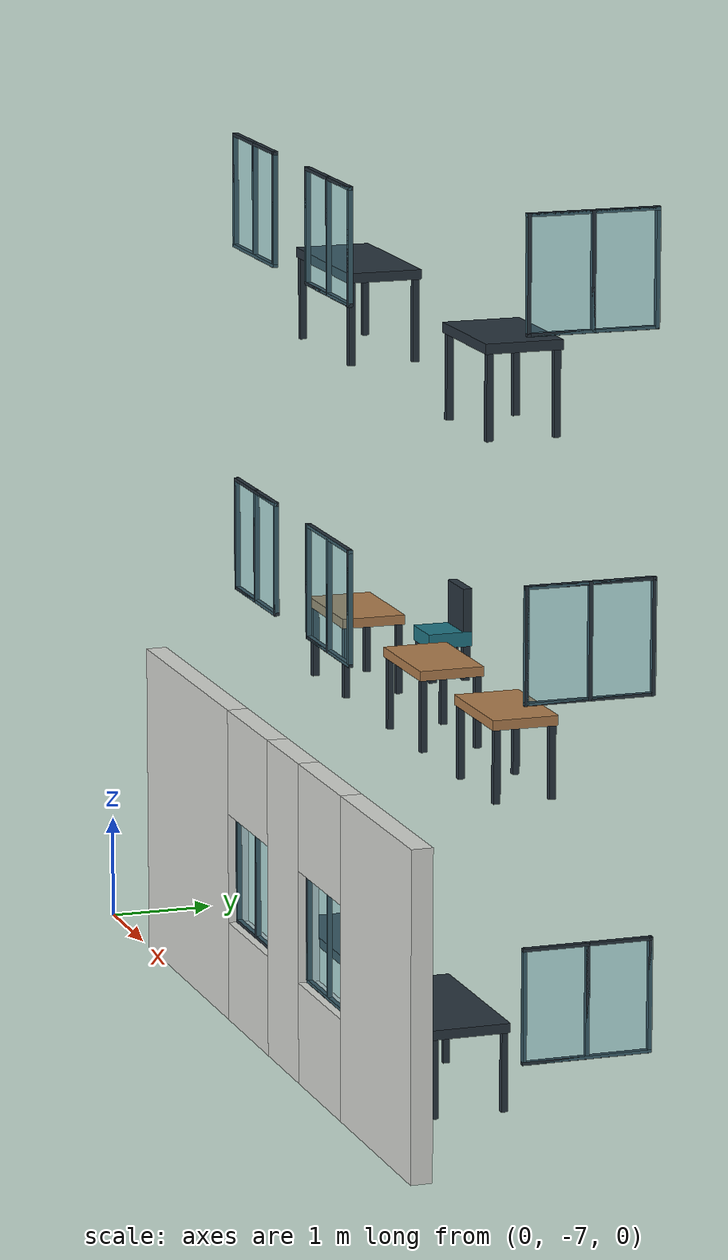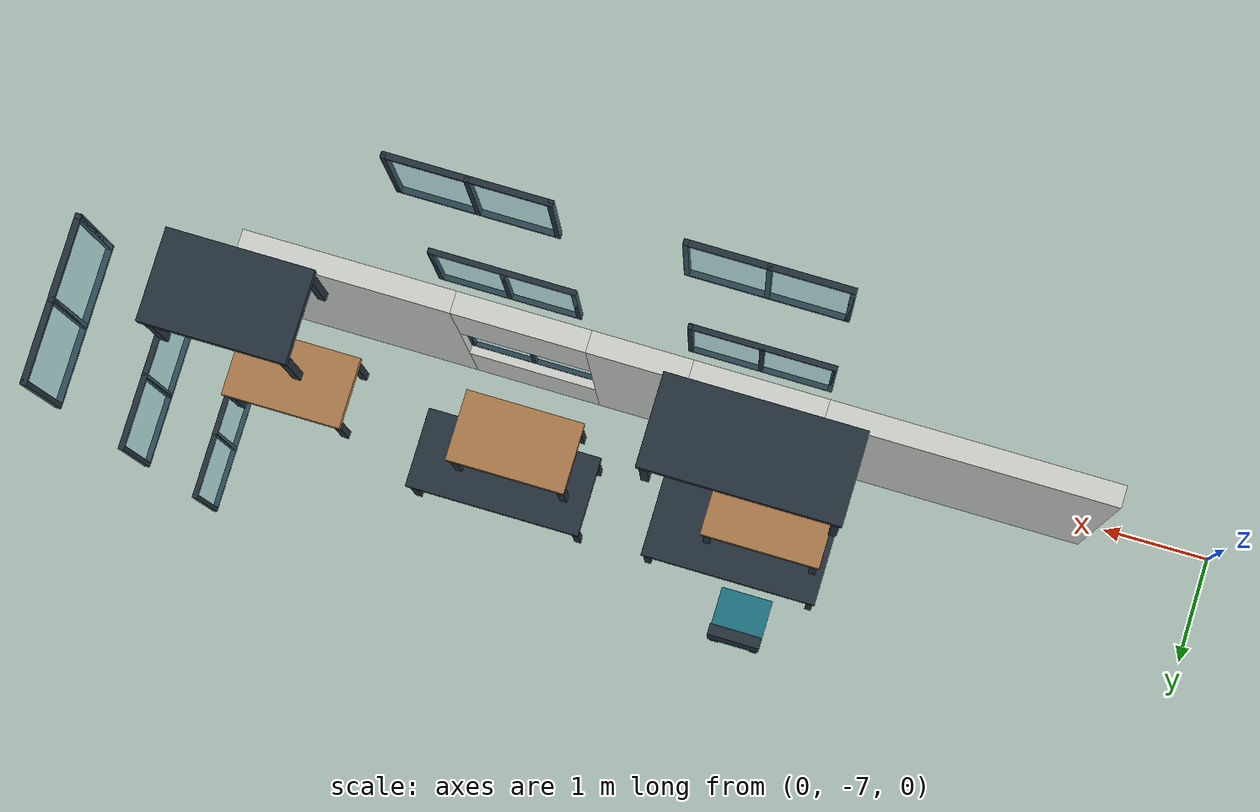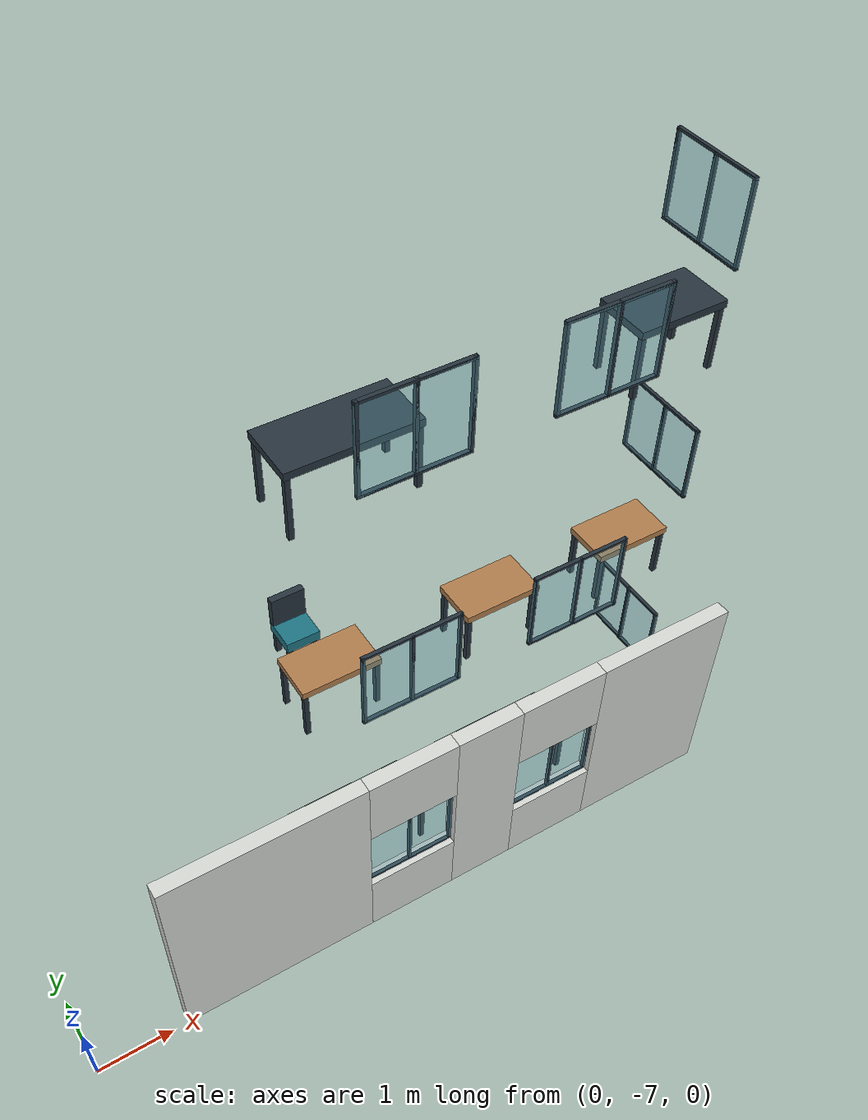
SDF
<sdf version="1.6">
 <world name="three_floor">
  <model name="f1_wall_005">
   <static>true</static>
   <pose>5.1 -6.9 1.5 0 0 0</pose>
   <link name="f1_wall_005_link">
    <collision name="f1_wall_005_link_panel_0_collision">
     <pose>-2.6 0 0 0 0 0</pose>
     <geometry><box><size>2.6 0.2 3</size></box></geometry>
    </collision>
    <visual name="f1_wall_005_link_panel_0_visual">
     <pose>-2.6 0 0 0 0 0</pose>
     <geometry><box><size>2.6 0.2 3</size></box></geometry>
     <material><ambient>.84 .85 .83 1</ambient><diffuse>.84 .85 .83 1</diffuse></material>
    </visual>
    <collision name="f1_wall_005_link_sill_0_collision">
     <pose>-0.7 0 -1.025 0 0 0</pose>
     <geometry><box><size>1.2 0.2 0.95</size></box></geometry>
    </collision>
    <visual name="f1_wall_005_link_sill_0_visual">
     <pose>-0.7 0 -1.025 0 0 0</pose>
     <geometry><box><size>1.2 0.2 0.95</size></box></geometry>
     <material><ambient>.84 .85 .83 1</ambient><diffuse>.84 .85 .83 1</diffuse></material>
    </visual>
    <collision name="f1_wall_005_link_header_0_collision">
     <pose>-0.7 0 1 0 0 0</pose>
     <geometry><box><size>1.2 0.2 1</size></box></geometry>
    </collision>
    <visual name="f1_wall_005_link_header_0_visual">
     <pose>-0.7 0 1 0 0 0</pose>
     <geometry><box><size>1.2 0.2 1</size></box></geometry>
     <material><ambient>.84 .85 .83 1</ambient><diffuse>.84 .85 .83 1</diffuse></material>
    </visual>
    <collision name="f1_wall_005_link_panel_1_collision">
     <pose>0.35 0 0 0 0 0</pose>
     <geometry><box><size>0.9 0.2 3</size></box></geometry>
    </collision>
    <visual name="f1_wall_005_link_panel_1_visual">
     <pose>0.35 0 0 0 0 0</pose>
     <geometry><box><size>0.9 0.2 3</size></box></geometry>
     <material><ambient>.84 .85 .83 1</ambient><diffuse>.84 .85 .83 1</diffuse></material>
    </visual>
    <collision name="f1_wall_005_link_sill_1_collision">
     <pose>1.4 0 -1.025 0 0 0</pose>
     <geometry><box><size>1.2 0.2 0.95</size></box></geometry>
    </collision>
    <visual name="f1_wall_005_link_sill_1_visual">
     <pose>1.4 0 -1.025 0 0 0</pose>
     <geometry><box><size>1.2 0.2 0.95</size></box></geometry>
     <material><ambient>.84 .85 .83 1</ambient><diffuse>.84 .85 .83 1</diffuse></material>
    </visual>
    <collision name="f1_wall_005_link_header_1_collision">
     <pose>1.4 0 1 0 0 0</pose>
     <geometry><box><size>1.2 0.2 1</size></box></geometry>
    </collision>
    <visual name="f1_wall_005_link_header_1_visual">
     <pose>1.4 0 1 0 0 0</pose>
     <geometry><box><size>1.2 0.2 1</size></box></geometry>
     <material><ambient>.84 .85 .83 1</ambient><diffuse>.84 .85 .83 1</diffuse></material>
    </visual>
    <collision name="f1_wall_005_link_last_panel_collision">
     <pose>2.95 0 0 0 0 0</pose>
     <geometry><box><size>1.9 0.2 3</size></box></geometry>
    </collision>
    <visual name="f1_wall_005_link_last_panel_visual">
     <pose>2.95 0 0 0 0 0</pose>
     <geometry><box><size>1.9 0.2 3</size></box></geometry>
     <material><ambient>.84 .85 .83 1</ambient><diffuse>.84 .85 .83 1</diffuse></material>
    </visual>
   </link>
  </model>
  <model name="f1_s2_window_03">
   <static>true</static>
   <pose>8.9 -5.35 1.475 0 0 0</pose>
   <link name="f1_s2_window_03_link">
    <collision name="f1_s2_window_03_link_glass_collision">
     <geometry><box><size>0.045 1.2 1.05</size></box></geometry>
    </collision>
    <visual name="f1_s2_window_03_link_glass_visual">
     <geometry><box><size>0.045 1.2 1.05</size></box></geometry>
     <material><ambient>0.44 0.76 0.83 1</ambient><diffuse>0.44 0.76 0.83 1</diffuse></material>
     <transparency>0.65</transparency>
    </visual>
    <collision name="f1_s2_window_03_link_mullion_-0.58_collision">
     <pose>0 -0.58 0 0 0 0</pose>
     <geometry><box><size>0.045 0.035 1.05</size></box></geometry>
    </collision>
    <visual name="f1_s2_window_03_link_mullion_-0.58_visual">
     <pose>0 -0.58 0 0 0 0</pose>
     <geometry><box><size>0.045 0.035 1.05</size></box></geometry>
     <material><ambient>0.15 0.2 0.24 1</ambient><diffuse>0.15 0.2 0.24 1</diffuse></material>
    </visual>
    <collision name="f1_s2_window_03_link_mullion_0.58_collision">
     <pose>0 0.58 0 0 0 0</pose>
     <geometry><box><size>0.045 0.035 1.05</size></box></geometry>
    </collision>
    <visual name="f1_s2_window_03_link_mullion_0.58_visual">
     <pose>0 0.58 0 0 0 0</pose>
     <geometry><box><size>0.045 0.035 1.05</size></box></geometry>
     <material><ambient>0.15 0.2 0.24 1</ambient><diffuse>0.15 0.2 0.24 1</diffuse></material>
    </visual>
    <collision name="f1_s2_window_03_link_mullion_0_collision">
     <geometry><box><size>0.045 0.035 1.05</size></box></geometry>
    </collision>
    <visual name="f1_s2_window_03_link_mullion_0_visual">
     <geometry><box><size>0.045 0.035 1.05</size></box></geometry>
     <material><ambient>0.15 0.2 0.24 1</ambient><diffuse>0.15 0.2 0.24 1</diffuse></material>
    </visual>
    <collision name="f1_s2_window_03_link_frame_-0.51_collision">
     <pose>0 0 -0.51 0 0 0</pose>
     <geometry><box><size>0.045 1.2 0.03</size></box></geometry>
    </collision>
    <visual name="f1_s2_window_03_link_frame_-0.51_visual">
     <pose>0 0 -0.51 0 0 0</pose>
     <geometry><box><size>0.045 1.2 0.03</size></box></geometry>
     <material><ambient>0.15 0.2 0.24 1</ambient><diffuse>0.15 0.2 0.24 1</diffuse></material>
    </visual>
    <collision name="f1_s2_window_03_link_frame_0.51_collision">
     <pose>0 0 0.51 0 0 0</pose>
     <geometry><box><size>0.045 1.2 0.03</size></box></geometry>
    </collision>
    <visual name="f1_s2_window_03_link_frame_0.51_visual">
     <pose>0 0 0.51 0 0 0</pose>
     <geometry><box><size>0.045 1.2 0.03</size></box></geometry>
     <material><ambient>0.15 0.2 0.24 1</ambient><diffuse>0.15 0.2 0.24 1</diffuse></material>
    </visual>
   </link>
  </model>
  <model name="f1_s2_window_10">
   <static>true</static>
   <pose>4.4 -6.9 1.475 0 0 0</pose>
   <link name="f1_s2_window_10_link">
    <collision name="f1_s2_window_10_link_glass_collision">
     <geometry><box><size>1.2 0.045 1.05</size></box></geometry>
    </collision>
    <visual name="f1_s2_window_10_link_glass_visual">
     <geometry><box><size>1.2 0.045 1.05</size></box></geometry>
     <material><ambient>0.44 0.76 0.83 1</ambient><diffuse>0.44 0.76 0.83 1</diffuse></material>
     <transparency>0.65</transparency>
    </visual>
    <collision name="f1_s2_window_10_link_mullion_-0.58_collision">
     <pose>-0.58 0 0 0 0 0</pose>
     <geometry><box><size>0.035 0.045 1.05</size></box></geometry>
    </collision>
    <visual name="f1_s2_window_10_link_mullion_-0.58_visual">
     <pose>-0.58 0 0 0 0 0</pose>
     <geometry><box><size>0.035 0.045 1.05</size></box></geometry>
     <material><ambient>0.15 0.2 0.24 1</ambient><diffuse>0.15 0.2 0.24 1</diffuse></material>
    </visual>
    <collision name="f1_s2_window_10_link_mullion_0.58_collision">
     <pose>0.58 0 0 0 0 0</pose>
     <geometry><box><size>0.035 0.045 1.05</size></box></geometry>
    </collision>
    <visual name="f1_s2_window_10_link_mullion_0.58_visual">
     <pose>0.58 0 0 0 0 0</pose>
     <geometry><box><size>0.035 0.045 1.05</size></box></geometry>
     <material><ambient>0.15 0.2 0.24 1</ambient><diffuse>0.15 0.2 0.24 1</diffuse></material>
    </visual>
    <collision name="f1_s2_window_10_link_mullion_0_collision">
     <geometry><box><size>0.035 0.045 1.05</size></box></geometry>
    </collision>
    <visual name="f1_s2_window_10_link_mullion_0_visual">
     <geometry><box><size>0.035 0.045 1.05</size></box></geometry>
     <material><ambient>0.15 0.2 0.24 1</ambient><diffuse>0.15 0.2 0.24 1</diffuse></material>
    </visual>
    <collision name="f1_s2_window_10_link_frame_-0.51_collision">
     <pose>0 0 -0.51 0 0 0</pose>
     <geometry><box><size>1.2 0.045 0.03</size></box></geometry>
    </collision>
    <visual name="f1_s2_window_10_link_frame_-0.51_visual">
     <pose>0 0 -0.51 0 0 0</pose>
     <geometry><box><size>1.2 0.045 0.03</size></box></geometry>
     <material><ambient>0.15 0.2 0.24 1</ambient><diffuse>0.15 0.2 0.24 1</diffuse></material>
    </visual>
    <collision name="f1_s2_window_10_link_frame_0.51_collision">
     <pose>0 0 0.51 0 0 0</pose>
     <geometry><box><size>1.2 0.045 0.03</size></box></geometry>
    </collision>
    <visual name="f1_s2_window_10_link_frame_0.51_visual">
     <pose>0 0 0.51 0 0 0</pose>
     <geometry><box><size>1.2 0.045 0.03</size></box></geometry>
     <material><ambient>0.15 0.2 0.24 1</ambient><diffuse>0.15 0.2 0.24 1</diffuse></material>
    </visual>
   </link>
  </model>
  <model name="f1_s2_window_11">
   <static>true</static>
   <pose>6.5 -6.9 1.475 0 0 0</pose>
   <link name="f1_s2_window_11_link">
    <collision name="f1_s2_window_11_link_glass_collision">
     <geometry><box><size>1.2 0.045 1.05</size></box></geometry>
    </collision>
    <visual name="f1_s2_window_11_link_glass_visual">
     <geometry><box><size>1.2 0.045 1.05</size></box></geometry>
     <material><ambient>0.44 0.76 0.83 1</ambient><diffuse>0.44 0.76 0.83 1</diffuse></material>
     <transparency>0.65</transparency>
    </visual>
    <collision name="f1_s2_window_11_link_mullion_-0.58_collision">
     <pose>-0.58 0 0 0 0 0</pose>
     <geometry><box><size>0.035 0.045 1.05</size></box></geometry>
    </collision>
    <visual name="f1_s2_window_11_link_mullion_-0.58_visual">
     <pose>-0.58 0 0 0 0 0</pose>
     <geometry><box><size>0.035 0.045 1.05</size></box></geometry>
     <material><ambient>0.15 0.2 0.24 1</ambient><diffuse>0.15 0.2 0.24 1</diffuse></material>
    </visual>
    <collision name="f1_s2_window_11_link_mullion_0.58_collision">
     <pose>0.58 0 0 0 0 0</pose>
     <geometry><box><size>0.035 0.045 1.05</size></box></geometry>
    </collision>
    <visual name="f1_s2_window_11_link_mullion_0.58_visual">
     <pose>0.58 0 0 0 0 0</pose>
     <geometry><box><size>0.035 0.045 1.05</size></box></geometry>
     <material><ambient>0.15 0.2 0.24 1</ambient><diffuse>0.15 0.2 0.24 1</diffuse></material>
    </visual>
    <collision name="f1_s2_window_11_link_mullion_0_collision">
     <geometry><box><size>0.035 0.045 1.05</size></box></geometry>
    </collision>
    <visual name="f1_s2_window_11_link_mullion_0_visual">
     <geometry><box><size>0.035 0.045 1.05</size></box></geometry>
     <material><ambient>0.15 0.2 0.24 1</ambient><diffuse>0.15 0.2 0.24 1</diffuse></material>
    </visual>
    <collision name="f1_s2_window_11_link_frame_-0.51_collision">
     <pose>0 0 -0.51 0 0 0</pose>
     <geometry><box><size>1.2 0.045 0.03</size></box></geometry>
    </collision>
    <visual name="f1_s2_window_11_link_frame_-0.51_visual">
     <pose>0 0 -0.51 0 0 0</pose>
     <geometry><box><size>1.2 0.045 0.03</size></box></geometry>
     <material><ambient>0.15 0.2 0.24 1</ambient><diffuse>0.15 0.2 0.24 1</diffuse></material>
    </visual>
    <collision name="f1_s2_window_11_link_frame_0.51_collision">
     <pose>0 0 0.51 0 0 0</pose>
     <geometry><box><size>1.2 0.045 0.03</size></box></geometry>
    </collision>
    <visual name="f1_s2_window_11_link_frame_0.51_visual">
     <pose>0 0 0.51 0 0 0</pose>
     <geometry><box><size>1.2 0.045 0.03</size></box></geometry>
     <material><ambient>0.15 0.2 0.24 1</ambient><diffuse>0.15 0.2 0.24 1</diffuse></material>
    </visual>
   </link>
  </model>
  <model name="f2_s2_window_14">
   <static>true</static>
   <pose>8.9 -5.35 4.675 0 0 0</pose>
   <link name="f2_s2_window_14_link">
    <collision name="f2_s2_window_14_link_glass_collision">
     <geometry><box><size>0.045 1.2 1.05</size></box></geometry>
    </collision>
    <visual name="f2_s2_window_14_link_glass_visual">
     <geometry><box><size>0.045 1.2 1.05</size></box></geometry>
     <material><ambient>0.44 0.76 0.83 1</ambient><diffuse>0.44 0.76 0.83 1</diffuse></material>
     <transparency>0.65</transparency>
    </visual>
    <collision name="f2_s2_window_14_link_mullion_-0.58_collision">
     <pose>0 -0.58 0 0 0 0</pose>
     <geometry><box><size>0.045 0.035 1.05</size></box></geometry>
    </collision>
    <visual name="f2_s2_window_14_link_mullion_-0.58_visual">
     <pose>0 -0.58 0 0 0 0</pose>
     <geometry><box><size>0.045 0.035 1.05</size></box></geometry>
     <material><ambient>0.15 0.2 0.24 1</ambient><diffuse>0.15 0.2 0.24 1</diffuse></material>
    </visual>
    <collision name="f2_s2_window_14_link_mullion_0.58_collision">
     <pose>0 0.58 0 0 0 0</pose>
     <geometry><box><size>0.045 0.035 1.05</size></box></geometry>
    </collision>
    <visual name="f2_s2_window_14_link_mullion_0.58_visual">
     <pose>0 0.58 0 0 0 0</pose>
     <geometry><box><size>0.045 0.035 1.05</size></box></geometry>
     <material><ambient>0.15 0.2 0.24 1</ambient><diffuse>0.15 0.2 0.24 1</diffuse></material>
    </visual>
    <collision name="f2_s2_window_14_link_mullion_0_collision">
     <geometry><box><size>0.045 0.035 1.05</size></box></geometry>
    </collision>
    <visual name="f2_s2_window_14_link_mullion_0_visual">
     <geometry><box><size>0.045 0.035 1.05</size></box></geometry>
     <material><ambient>0.15 0.2 0.24 1</ambient><diffuse>0.15 0.2 0.24 1</diffuse></material>
    </visual>
    <collision name="f2_s2_window_14_link_frame_-0.51_collision">
     <pose>0 0 -0.51 0 0 0</pose>
     <geometry><box><size>0.045 1.2 0.03</size></box></geometry>
    </collision>
    <visual name="f2_s2_window_14_link_frame_-0.51_visual">
     <pose>0 0 -0.51 0 0 0</pose>
     <geometry><box><size>0.045 1.2 0.03</size></box></geometry>
     <material><ambient>0.15 0.2 0.24 1</ambient><diffuse>0.15 0.2 0.24 1</diffuse></material>
    </visual>
    <collision name="f2_s2_window_14_link_frame_0.51_collision">
     <pose>0 0 0.51 0 0 0</pose>
     <geometry><box><size>0.045 1.2 0.03</size></box></geometry>
    </collision>
    <visual name="f2_s2_window_14_link_frame_0.51_visual">
     <pose>0 0 0.51 0 0 0</pose>
     <geometry><box><size>0.045 1.2 0.03</size></box></geometry>
     <material><ambient>0.15 0.2 0.24 1</ambient><diffuse>0.15 0.2 0.24 1</diffuse></material>
    </visual>
   </link>
  </model>
  <model name="f2_s2_window_22">
   <static>true</static>
   <pose>4.4 -6.9 4.675 0 0 0</pose>
   <link name="f2_s2_window_22_link">
    <collision name="f2_s2_window_22_link_glass_collision">
     <geometry><box><size>1.2 0.045 1.05</size></box></geometry>
    </collision>
    <visual name="f2_s2_window_22_link_glass_visual">
     <geometry><box><size>1.2 0.045 1.05</size></box></geometry>
     <material><ambient>0.44 0.76 0.83 1</ambient><diffuse>0.44 0.76 0.83 1</diffuse></material>
     <transparency>0.65</transparency>
    </visual>
    <collision name="f2_s2_window_22_link_mullion_-0.58_collision">
     <pose>-0.58 0 0 0 0 0</pose>
     <geometry><box><size>0.035 0.045 1.05</size></box></geometry>
    </collision>
    <visual name="f2_s2_window_22_link_mullion_-0.58_visual">
     <pose>-0.58 0 0 0 0 0</pose>
     <geometry><box><size>0.035 0.045 1.05</size></box></geometry>
     <material><ambient>0.15 0.2 0.24 1</ambient><diffuse>0.15 0.2 0.24 1</diffuse></material>
    </visual>
    <collision name="f2_s2_window_22_link_mullion_0.58_collision">
     <pose>0.58 0 0 0 0 0</pose>
     <geometry><box><size>0.035 0.045 1.05</size></box></geometry>
    </collision>
    <visual name="f2_s2_window_22_link_mullion_0.58_visual">
     <pose>0.58 0 0 0 0 0</pose>
     <geometry><box><size>0.035 0.045 1.05</size></box></geometry>
     <material><ambient>0.15 0.2 0.24 1</ambient><diffuse>0.15 0.2 0.24 1</diffuse></material>
    </visual>
    <collision name="f2_s2_window_22_link_mullion_0_collision">
     <geometry><box><size>0.035 0.045 1.05</size></box></geometry>
    </collision>
    <visual name="f2_s2_window_22_link_mullion_0_visual">
     <geometry><box><size>0.035 0.045 1.05</size></box></geometry>
     <material><ambient>0.15 0.2 0.24 1</ambient><diffuse>0.15 0.2 0.24 1</diffuse></material>
    </visual>
    <collision name="f2_s2_window_22_link_frame_-0.51_collision">
     <pose>0 0 -0.51 0 0 0</pose>
     <geometry><box><size>1.2 0.045 0.03</size></box></geometry>
    </collision>
    <visual name="f2_s2_window_22_link_frame_-0.51_visual">
     <pose>0 0 -0.51 0 0 0</pose>
     <geometry><box><size>1.2 0.045 0.03</size></box></geometry>
     <material><ambient>0.15 0.2 0.24 1</ambient><diffuse>0.15 0.2 0.24 1</diffuse></material>
    </visual>
    <collision name="f2_s2_window_22_link_frame_0.51_collision">
     <pose>0 0 0.51 0 0 0</pose>
     <geometry><box><size>1.2 0.045 0.03</size></box></geometry>
    </collision>
    <visual name="f2_s2_window_22_link_frame_0.51_visual">
     <pose>0 0 0.51 0 0 0</pose>
     <geometry><box><size>1.2 0.045 0.03</size></box></geometry>
     <material><ambient>0.15 0.2 0.24 1</ambient><diffuse>0.15 0.2 0.24 1</diffuse></material>
    </visual>
   </link>
  </model>
  <model name="f2_s2_window_23">
   <static>true</static>
   <pose>6.5 -6.9 4.675 0 0 0</pose>
   <link name="f2_s2_window_23_link">
    <collision name="f2_s2_window_23_link_glass_collision">
     <geometry><box><size>1.2 0.045 1.05</size></box></geometry>
    </collision>
    <visual name="f2_s2_window_23_link_glass_visual">
     <geometry><box><size>1.2 0.045 1.05</size></box></geometry>
     <material><ambient>0.44 0.76 0.83 1</ambient><diffuse>0.44 0.76 0.83 1</diffuse></material>
     <transparency>0.65</transparency>
    </visual>
    <collision name="f2_s2_window_23_link_mullion_-0.58_collision">
     <pose>-0.58 0 0 0 0 0</pose>
     <geometry><box><size>0.035 0.045 1.05</size></box></geometry>
    </collision>
    <visual name="f2_s2_window_23_link_mullion_-0.58_visual">
     <pose>-0.58 0 0 0 0 0</pose>
     <geometry><box><size>0.035 0.045 1.05</size></box></geometry>
     <material><ambient>0.15 0.2 0.24 1</ambient><diffuse>0.15 0.2 0.24 1</diffuse></material>
    </visual>
    <collision name="f2_s2_window_23_link_mullion_0.58_collision">
     <pose>0.58 0 0 0 0 0</pose>
     <geometry><box><size>0.035 0.045 1.05</size></box></geometry>
    </collision>
    <visual name="f2_s2_window_23_link_mullion_0.58_visual">
     <pose>0.58 0 0 0 0 0</pose>
     <geometry><box><size>0.035 0.045 1.05</size></box></geometry>
     <material><ambient>0.15 0.2 0.24 1</ambient><diffuse>0.15 0.2 0.24 1</diffuse></material>
    </visual>
    <collision name="f2_s2_window_23_link_mullion_0_collision">
     <geometry><box><size>0.035 0.045 1.05</size></box></geometry>
    </collision>
    <visual name="f2_s2_window_23_link_mullion_0_visual">
     <geometry><box><size>0.035 0.045 1.05</size></box></geometry>
     <material><ambient>0.15 0.2 0.24 1</ambient><diffuse>0.15 0.2 0.24 1</diffuse></material>
    </visual>
    <collision name="f2_s2_window_23_link_frame_-0.51_collision">
     <pose>0 0 -0.51 0 0 0</pose>
     <geometry><box><size>1.2 0.045 0.03</size></box></geometry>
    </collision>
    <visual name="f2_s2_window_23_link_frame_-0.51_visual">
     <pose>0 0 -0.51 0 0 0</pose>
     <geometry><box><size>1.2 0.045 0.03</size></box></geometry>
     <material><ambient>0.15 0.2 0.24 1</ambient><diffuse>0.15 0.2 0.24 1</diffuse></material>
    </visual>
    <collision name="f2_s2_window_23_link_frame_0.51_collision">
     <pose>0 0 0.51 0 0 0</pose>
     <geometry><box><size>1.2 0.045 0.03</size></box></geometry>
    </collision>
    <visual name="f2_s2_window_23_link_frame_0.51_visual">
     <pose>0 0 0.51 0 0 0</pose>
     <geometry><box><size>1.2 0.045 0.03</size></box></geometry>
     <material><ambient>0.15 0.2 0.24 1</ambient><diffuse>0.15 0.2 0.24 1</diffuse></material>
    </visual>
   </link>
  </model>
  <model name="f3_s2_window_26">
   <static>true</static>
   <pose>8.9 -5.35 7.875 0 0 0</pose>
   <link name="f3_s2_window_26_link">
    <collision name="f3_s2_window_26_link_glass_collision">
     <geometry><box><size>0.045 1.2 1.05</size></box></geometry>
    </collision>
    <visual name="f3_s2_window_26_link_glass_visual">
     <geometry><box><size>0.045 1.2 1.05</size></box></geometry>
     <material><ambient>0.44 0.76 0.83 1</ambient><diffuse>0.44 0.76 0.83 1</diffuse></material>
     <transparency>0.65</transparency>
    </visual>
    <collision name="f3_s2_window_26_link_mullion_-0.58_collision">
     <pose>0 -0.58 0 0 0 0</pose>
     <geometry><box><size>0.045 0.035 1.05</size></box></geometry>
    </collision>
    <visual name="f3_s2_window_26_link_mullion_-0.58_visual">
     <pose>0 -0.58 0 0 0 0</pose>
     <geometry><box><size>0.045 0.035 1.05</size></box></geometry>
     <material><ambient>0.15 0.2 0.24 1</ambient><diffuse>0.15 0.2 0.24 1</diffuse></material>
    </visual>
    <collision name="f3_s2_window_26_link_mullion_0.58_collision">
     <pose>0 0.58 0 0 0 0</pose>
     <geometry><box><size>0.045 0.035 1.05</size></box></geometry>
    </collision>
    <visual name="f3_s2_window_26_link_mullion_0.58_visual">
     <pose>0 0.58 0 0 0 0</pose>
     <geometry><box><size>0.045 0.035 1.05</size></box></geometry>
     <material><ambient>0.15 0.2 0.24 1</ambient><diffuse>0.15 0.2 0.24 1</diffuse></material>
    </visual>
    <collision name="f3_s2_window_26_link_mullion_0_collision">
     <geometry><box><size>0.045 0.035 1.05</size></box></geometry>
    </collision>
    <visual name="f3_s2_window_26_link_mullion_0_visual">
     <geometry><box><size>0.045 0.035 1.05</size></box></geometry>
     <material><ambient>0.15 0.2 0.24 1</ambient><diffuse>0.15 0.2 0.24 1</diffuse></material>
    </visual>
    <collision name="f3_s2_window_26_link_frame_-0.51_collision">
     <pose>0 0 -0.51 0 0 0</pose>
     <geometry><box><size>0.045 1.2 0.03</size></box></geometry>
    </collision>
    <visual name="f3_s2_window_26_link_frame_-0.51_visual">
     <pose>0 0 -0.51 0 0 0</pose>
     <geometry><box><size>0.045 1.2 0.03</size></box></geometry>
     <material><ambient>0.15 0.2 0.24 1</ambient><diffuse>0.15 0.2 0.24 1</diffuse></material>
    </visual>
    <collision name="f3_s2_window_26_link_frame_0.51_collision">
     <pose>0 0 0.51 0 0 0</pose>
     <geometry><box><size>0.045 1.2 0.03</size></box></geometry>
    </collision>
    <visual name="f3_s2_window_26_link_frame_0.51_visual">
     <pose>0 0 0.51 0 0 0</pose>
     <geometry><box><size>0.045 1.2 0.03</size></box></geometry>
     <material><ambient>0.15 0.2 0.24 1</ambient><diffuse>0.15 0.2 0.24 1</diffuse></material>
    </visual>
   </link>
  </model>
  <model name="f3_s2_window_34">
   <static>true</static>
   <pose>4.4 -6.9 7.875 0 0 0</pose>
   <link name="f3_s2_window_34_link">
    <collision name="f3_s2_window_34_link_glass_collision">
     <geometry><box><size>1.2 0.045 1.05</size></box></geometry>
    </collision>
    <visual name="f3_s2_window_34_link_glass_visual">
     <geometry><box><size>1.2 0.045 1.05</size></box></geometry>
     <material><ambient>0.44 0.76 0.83 1</ambient><diffuse>0.44 0.76 0.83 1</diffuse></material>
     <transparency>0.65</transparency>
    </visual>
    <collision name="f3_s2_window_34_link_mullion_-0.58_collision">
     <pose>-0.58 0 0 0 0 0</pose>
     <geometry><box><size>0.035 0.045 1.05</size></box></geometry>
    </collision>
    <visual name="f3_s2_window_34_link_mullion_-0.58_visual">
     <pose>-0.58 0 0 0 0 0</pose>
     <geometry><box><size>0.035 0.045 1.05</size></box></geometry>
     <material><ambient>0.15 0.2 0.24 1</ambient><diffuse>0.15 0.2 0.24 1</diffuse></material>
    </visual>
    <collision name="f3_s2_window_34_link_mullion_0.58_collision">
     <pose>0.58 0 0 0 0 0</pose>
     <geometry><box><size>0.035 0.045 1.05</size></box></geometry>
    </collision>
    <visual name="f3_s2_window_34_link_mullion_0.58_visual">
     <pose>0.58 0 0 0 0 0</pose>
     <geometry><box><size>0.035 0.045 1.05</size></box></geometry>
     <material><ambient>0.15 0.2 0.24 1</ambient><diffuse>0.15 0.2 0.24 1</diffuse></material>
    </visual>
    <collision name="f3_s2_window_34_link_mullion_0_collision">
     <geometry><box><size>0.035 0.045 1.05</size></box></geometry>
    </collision>
    <visual name="f3_s2_window_34_link_mullion_0_visual">
     <geometry><box><size>0.035 0.045 1.05</size></box></geometry>
     <material><ambient>0.15 0.2 0.24 1</ambient><diffuse>0.15 0.2 0.24 1</diffuse></material>
    </visual>
    <collision name="f3_s2_window_34_link_frame_-0.51_collision">
     <pose>0 0 -0.51 0 0 0</pose>
     <geometry><box><size>1.2 0.045 0.03</size></box></geometry>
    </collision>
    <visual name="f3_s2_window_34_link_frame_-0.51_visual">
     <pose>0 0 -0.51 0 0 0</pose>
     <geometry><box><size>1.2 0.045 0.03</size></box></geometry>
     <material><ambient>0.15 0.2 0.24 1</ambient><diffuse>0.15 0.2 0.24 1</diffuse></material>
    </visual>
    <collision name="f3_s2_window_34_link_frame_0.51_collision">
     <pose>0 0 0.51 0 0 0</pose>
     <geometry><box><size>1.2 0.045 0.03</size></box></geometry>
    </collision>
    <visual name="f3_s2_window_34_link_frame_0.51_visual">
     <pose>0 0 0.51 0 0 0</pose>
     <geometry><box><size>1.2 0.045 0.03</size></box></geometry>
     <material><ambient>0.15 0.2 0.24 1</ambient><diffuse>0.15 0.2 0.24 1</diffuse></material>
    </visual>
   </link>
  </model>
  <model name="f3_s2_window_35">
   <static>true</static>
   <pose>6.5 -6.9 7.875 0 0 0</pose>
   <link name="f3_s2_window_35_link">
    <collision name="f3_s2_window_35_link_glass_collision">
     <geometry><box><size>1.2 0.045 1.05</size></box></geometry>
    </collision>
    <visual name="f3_s2_window_35_link_glass_visual">
     <geometry><box><size>1.2 0.045 1.05</size></box></geometry>
     <material><ambient>0.44 0.76 0.83 1</ambient><diffuse>0.44 0.76 0.83 1</diffuse></material>
     <transparency>0.65</transparency>
    </visual>
    <collision name="f3_s2_window_35_link_mullion_-0.58_collision">
     <pose>-0.58 0 0 0 0 0</pose>
     <geometry><box><size>0.035 0.045 1.05</size></box></geometry>
    </collision>
    <visual name="f3_s2_window_35_link_mullion_-0.58_visual">
     <pose>-0.58 0 0 0 0 0</pose>
     <geometry><box><size>0.035 0.045 1.05</size></box></geometry>
     <material><ambient>0.15 0.2 0.24 1</ambient><diffuse>0.15 0.2 0.24 1</diffuse></material>
    </visual>
    <collision name="f3_s2_window_35_link_mullion_0.58_collision">
     <pose>0.58 0 0 0 0 0</pose>
     <geometry><box><size>0.035 0.045 1.05</size></box></geometry>
    </collision>
    <visual name="f3_s2_window_35_link_mullion_0.58_visual">
     <pose>0.58 0 0 0 0 0</pose>
     <geometry><box><size>0.035 0.045 1.05</size></box></geometry>
     <material><ambient>0.15 0.2 0.24 1</ambient><diffuse>0.15 0.2 0.24 1</diffuse></material>
    </visual>
    <collision name="f3_s2_window_35_link_mullion_0_collision">
     <geometry><box><size>0.035 0.045 1.05</size></box></geometry>
    </collision>
    <visual name="f3_s2_window_35_link_mullion_0_visual">
     <geometry><box><size>0.035 0.045 1.05</size></box></geometry>
     <material><ambient>0.15 0.2 0.24 1</ambient><diffuse>0.15 0.2 0.24 1</diffuse></material>
    </visual>
    <collision name="f3_s2_window_35_link_frame_-0.51_collision">
     <pose>0 0 -0.51 0 0 0</pose>
     <geometry><box><size>1.2 0.045 0.03</size></box></geometry>
    </collision>
    <visual name="f3_s2_window_35_link_frame_-0.51_visual">
     <pose>0 0 -0.51 0 0 0</pose>
     <geometry><box><size>1.2 0.045 0.03</size></box></geometry>
     <material><ambient>0.15 0.2 0.24 1</ambient><diffuse>0.15 0.2 0.24 1</diffuse></material>
    </visual>
    <collision name="f3_s2_window_35_link_frame_0.51_collision">
     <pose>0 0 0.51 0 0 0</pose>
     <geometry><box><size>1.2 0.045 0.03</size></box></geometry>
    </collision>
    <visual name="f3_s2_window_35_link_frame_0.51_visual">
     <pose>0 0 0.51 0 0 0</pose>
     <geometry><box><size>1.2 0.045 0.03</size></box></geometry>
     <material><ambient>0.15 0.2 0.24 1</ambient><diffuse>0.15 0.2 0.24 1</diffuse></material>
    </visual>
   </link>
  </model>
  <model name="f1_s2_furniture_14_workbench">
   <static>true</static>
   <pose>4.25 -5.85 0 0 0 0</pose>
   <link name="f1_s2_furniture_14_workbench_link">
    <collision name="f1_s2_furniture_14_workbench_link_top_collision">
     <pose>0 0 0.785 0 0 0</pose>
     <geometry><box><size>1.65 0.75 0.09</size></box></geometry>
    </collision>
    <visual name="f1_s2_furniture_14_workbench_link_top_visual">
     <pose>0 0 0.785 0 0 0</pose>
     <geometry><box><size>1.65 0.75 0.09</size></box></geometry>
     <material><ambient>0.15 0.2 0.24 1</ambient><diffuse>0.15 0.2 0.24 1</diffuse></material>
    </visual>
    <collision name="f1_s2_furniture_14_workbench_link_leg_-0.7799999999999999_-0.33_collision">
     <pose>-0.78 -0.33 0.37 0 0 0</pose>
     <geometry><box><size>0.06 0.06 0.74</size></box></geometry>
    </collision>
    <visual name="f1_s2_furniture_14_workbench_link_leg_-0.7799999999999999_-0.33_visual">
     <pose>-0.78 -0.33 0.37 0 0 0</pose>
     <geometry><box><size>0.06 0.06 0.74</size></box></geometry>
     <material><ambient>0.15 0.2 0.24 1</ambient><diffuse>0.15 0.2 0.24 1</diffuse></material>
    </visual>
    <collision name="f1_s2_furniture_14_workbench_link_leg_-0.7799999999999999_0.33_collision">
     <pose>-0.78 0.33 0.37 0 0 0</pose>
     <geometry><box><size>0.06 0.06 0.74</size></box></geometry>
    </collision>
    <visual name="f1_s2_furniture_14_workbench_link_leg_-0.7799999999999999_0.33_visual">
     <pose>-0.78 0.33 0.37 0 0 0</pose>
     <geometry><box><size>0.06 0.06 0.74</size></box></geometry>
     <material><ambient>0.15 0.2 0.24 1</ambient><diffuse>0.15 0.2 0.24 1</diffuse></material>
    </visual>
    <collision name="f1_s2_furniture_14_workbench_link_leg_0.7799999999999999_-0.33_collision">
     <pose>0.78 -0.33 0.37 0 0 0</pose>
     <geometry><box><size>0.06 0.06 0.74</size></box></geometry>
    </collision>
    <visual name="f1_s2_furniture_14_workbench_link_leg_0.7799999999999999_-0.33_visual">
     <pose>0.78 -0.33 0.37 0 0 0</pose>
     <geometry><box><size>0.06 0.06 0.74</size></box></geometry>
     <material><ambient>0.15 0.2 0.24 1</ambient><diffuse>0.15 0.2 0.24 1</diffuse></material>
    </visual>
    <collision name="f1_s2_furniture_14_workbench_link_leg_0.7799999999999999_0.33_collision">
     <pose>0.78 0.33 0.37 0 0 0</pose>
     <geometry><box><size>0.06 0.06 0.74</size></box></geometry>
    </collision>
    <visual name="f1_s2_furniture_14_workbench_link_leg_0.7799999999999999_0.33_visual">
     <pose>0.78 0.33 0.37 0 0 0</pose>
     <geometry><box><size>0.06 0.06 0.74</size></box></geometry>
     <material><ambient>0.15 0.2 0.24 1</ambient><diffuse>0.15 0.2 0.24 1</diffuse></material>
    </visual>
   </link>
  </model>
  <model name="f1_s2_furniture_15_workbench">
   <static>true</static>
   <pose>6.5 -5.85 0 0 0 0</pose>
   <link name="f1_s2_furniture_15_workbench_link">
    <collision name="f1_s2_furniture_15_workbench_link_top_collision">
     <pose>0 0 0.785 0 0 0</pose>
     <geometry><box><size>1.65 0.75 0.09</size></box></geometry>
    </collision>
    <visual name="f1_s2_furniture_15_workbench_link_top_visual">
     <pose>0 0 0.785 0 0 0</pose>
     <geometry><box><size>1.65 0.75 0.09</size></box></geometry>
     <material><ambient>0.15 0.2 0.24 1</ambient><diffuse>0.15 0.2 0.24 1</diffuse></material>
    </visual>
    <collision name="f1_s2_furniture_15_workbench_link_leg_-0.7799999999999999_-0.33_collision">
     <pose>-0.78 -0.33 0.37 0 0 0</pose>
     <geometry><box><size>0.06 0.06 0.74</size></box></geometry>
    </collision>
    <visual name="f1_s2_furniture_15_workbench_link_leg_-0.7799999999999999_-0.33_visual">
     <pose>-0.78 -0.33 0.37 0 0 0</pose>
     <geometry><box><size>0.06 0.06 0.74</size></box></geometry>
     <material><ambient>0.15 0.2 0.24 1</ambient><diffuse>0.15 0.2 0.24 1</diffuse></material>
    </visual>
    <collision name="f1_s2_furniture_15_workbench_link_leg_-0.7799999999999999_0.33_collision">
     <pose>-0.78 0.33 0.37 0 0 0</pose>
     <geometry><box><size>0.06 0.06 0.74</size></box></geometry>
    </collision>
    <visual name="f1_s2_furniture_15_workbench_link_leg_-0.7799999999999999_0.33_visual">
     <pose>-0.78 0.33 0.37 0 0 0</pose>
     <geometry><box><size>0.06 0.06 0.74</size></box></geometry>
     <material><ambient>0.15 0.2 0.24 1</ambient><diffuse>0.15 0.2 0.24 1</diffuse></material>
    </visual>
    <collision name="f1_s2_furniture_15_workbench_link_leg_0.7799999999999999_-0.33_collision">
     <pose>0.78 -0.33 0.37 0 0 0</pose>
     <geometry><box><size>0.06 0.06 0.74</size></box></geometry>
    </collision>
    <visual name="f1_s2_furniture_15_workbench_link_leg_0.7799999999999999_-0.33_visual">
     <pose>0.78 -0.33 0.37 0 0 0</pose>
     <geometry><box><size>0.06 0.06 0.74</size></box></geometry>
     <material><ambient>0.15 0.2 0.24 1</ambient><diffuse>0.15 0.2 0.24 1</diffuse></material>
    </visual>
    <collision name="f1_s2_furniture_15_workbench_link_leg_0.7799999999999999_0.33_collision">
     <pose>0.78 0.33 0.37 0 0 0</pose>
     <geometry><box><size>0.06 0.06 0.74</size></box></geometry>
    </collision>
    <visual name="f1_s2_furniture_15_workbench_link_leg_0.7799999999999999_0.33_visual">
     <pose>0.78 0.33 0.37 0 0 0</pose>
     <geometry><box><size>0.06 0.06 0.74</size></box></geometry>
     <material><ambient>0.15 0.2 0.24 1</ambient><diffuse>0.15 0.2 0.24 1</diffuse></material>
    </visual>
   </link>
  </model>
  <model name="f2_s2_furniture_40_desk">
   <static>true</static>
   <pose>4 -5.8 3.2 0 0 0</pose>
   <link name="f2_s2_furniture_40_desk_link">
    <collision name="f2_s2_furniture_40_desk_link_top_collision">
     <pose>0 0 0.705 0 0 0</pose>
     <geometry><box><size>1 0.6 0.09</size></box></geometry>
    </collision>
    <visual name="f2_s2_furniture_40_desk_link_top_visual">
     <pose>0 0 0.705 0 0 0</pose>
     <geometry><box><size>1 0.6 0.09</size></box></geometry>
     <material><ambient>0.69 0.49 0.3 1</ambient><diffuse>0.69 0.49 0.3 1</diffuse></material>
    </visual>
    <collision name="f2_s2_furniture_40_desk_link_leg_-0.455_-0.255_collision">
     <pose>-0.455 -0.255 0.33 0 0 0</pose>
     <geometry><box><size>0.06 0.06 0.66</size></box></geometry>
    </collision>
    <visual name="f2_s2_furniture_40_desk_link_leg_-0.455_-0.255_visual">
     <pose>-0.455 -0.255 0.33 0 0 0</pose>
     <geometry><box><size>0.06 0.06 0.66</size></box></geometry>
     <material><ambient>0.15 0.2 0.24 1</ambient><diffuse>0.15 0.2 0.24 1</diffuse></material>
    </visual>
    <collision name="f2_s2_furniture_40_desk_link_leg_-0.455_0.255_collision">
     <pose>-0.455 0.255 0.33 0 0 0</pose>
     <geometry><box><size>0.06 0.06 0.66</size></box></geometry>
    </collision>
    <visual name="f2_s2_furniture_40_desk_link_leg_-0.455_0.255_visual">
     <pose>-0.455 0.255 0.33 0 0 0</pose>
     <geometry><box><size>0.06 0.06 0.66</size></box></geometry>
     <material><ambient>0.15 0.2 0.24 1</ambient><diffuse>0.15 0.2 0.24 1</diffuse></material>
    </visual>
    <collision name="f2_s2_furniture_40_desk_link_leg_0.455_-0.255_collision">
     <pose>0.455 -0.255 0.33 0 0 0</pose>
     <geometry><box><size>0.06 0.06 0.66</size></box></geometry>
    </collision>
    <visual name="f2_s2_furniture_40_desk_link_leg_0.455_-0.255_visual">
     <pose>0.455 -0.255 0.33 0 0 0</pose>
     <geometry><box><size>0.06 0.06 0.66</size></box></geometry>
     <material><ambient>0.15 0.2 0.24 1</ambient><diffuse>0.15 0.2 0.24 1</diffuse></material>
    </visual>
    <collision name="f2_s2_furniture_40_desk_link_leg_0.455_0.255_collision">
     <pose>0.455 0.255 0.33 0 0 0</pose>
     <geometry><box><size>0.06 0.06 0.66</size></box></geometry>
    </collision>
    <visual name="f2_s2_furniture_40_desk_link_leg_0.455_0.255_visual">
     <pose>0.455 0.255 0.33 0 0 0</pose>
     <geometry><box><size>0.06 0.06 0.66</size></box></geometry>
     <material><ambient>0.15 0.2 0.24 1</ambient><diffuse>0.15 0.2 0.24 1</diffuse></material>
    </visual>
   </link>
  </model>
  <model name="f2_s2_furniture_41_seat">
   <static>true</static>
   <pose>4 -4.95 3.2 0 0 0</pose>
   <link name="f2_s2_furniture_41_seat_link">
    <collision name="f2_s2_furniture_41_seat_link_seat_collision">
     <pose>0 0 0.4 0 0 0</pose>
     <geometry><box><size>0.43 0.43 0.14</size></box></geometry>
    </collision>
    <visual name="f2_s2_furniture_41_seat_link_seat_visual">
     <pose>0 0 0.4 0 0 0</pose>
     <geometry><box><size>0.43 0.43 0.14</size></box></geometry>
     <material><ambient>0.12 0.46 0.52 1</ambient><diffuse>0.12 0.46 0.52 1</diffuse></material>
    </visual>
    <collision name="f2_s2_furniture_41_seat_link_back_collision">
     <pose>0 0.17 0.675 0 0 0</pose>
     <geometry><box><size>0.43 0.09 0.41</size></box></geometry>
    </collision>
    <visual name="f2_s2_furniture_41_seat_link_back_visual">
     <pose>0 0.17 0.675 0 0 0</pose>
     <geometry><box><size>0.43 0.09 0.41</size></box></geometry>
     <material><ambient>0.15 0.2 0.24 1</ambient><diffuse>0.15 0.2 0.24 1</diffuse></material>
    </visual>
    <collision name="f2_s2_furniture_41_seat_link_leg_-0.16499999999999998_-0.16499999999999998_collision">
     <pose>-0.165 -0.165 0.165 0 0 0</pose>
     <geometry><box><size>0.07 0.07 0.33</size></box></geometry>
    </collision>
    <visual name="f2_s2_furniture_41_seat_link_leg_-0.16499999999999998_-0.16499999999999998_visual">
     <pose>-0.165 -0.165 0.165 0 0 0</pose>
     <geometry><box><size>0.07 0.07 0.33</size></box></geometry>
     <material><ambient>0.15 0.2 0.24 1</ambient><diffuse>0.15 0.2 0.24 1</diffuse></material>
    </visual>
    <collision name="f2_s2_furniture_41_seat_link_leg_-0.16499999999999998_0.16499999999999998_collision">
     <pose>-0.165 0.165 0.165 0 0 0</pose>
     <geometry><box><size>0.07 0.07 0.33</size></box></geometry>
    </collision>
    <visual name="f2_s2_furniture_41_seat_link_leg_-0.16499999999999998_0.16499999999999998_visual">
     <pose>-0.165 0.165 0.165 0 0 0</pose>
     <geometry><box><size>0.07 0.07 0.33</size></box></geometry>
     <material><ambient>0.15 0.2 0.24 1</ambient><diffuse>0.15 0.2 0.24 1</diffuse></material>
    </visual>
    <collision name="f2_s2_furniture_41_seat_link_leg_0.16499999999999998_-0.16499999999999998_collision">
     <pose>0.165 -0.165 0.165 0 0 0</pose>
     <geometry><box><size>0.07 0.07 0.33</size></box></geometry>
    </collision>
    <visual name="f2_s2_furniture_41_seat_link_leg_0.16499999999999998_-0.16499999999999998_visual">
     <pose>0.165 -0.165 0.165 0 0 0</pose>
     <geometry><box><size>0.07 0.07 0.33</size></box></geometry>
     <material><ambient>0.15 0.2 0.24 1</ambient><diffuse>0.15 0.2 0.24 1</diffuse></material>
    </visual>
    <collision name="f2_s2_furniture_41_seat_link_leg_0.16499999999999998_0.16499999999999998_collision">
     <pose>0.165 0.165 0.165 0 0 0</pose>
     <geometry><box><size>0.07 0.07 0.33</size></box></geometry>
    </collision>
    <visual name="f2_s2_furniture_41_seat_link_leg_0.16499999999999998_0.16499999999999998_visual">
     <pose>0.165 0.165 0.165 0 0 0</pose>
     <geometry><box><size>0.07 0.07 0.33</size></box></geometry>
     <material><ambient>0.15 0.2 0.24 1</ambient><diffuse>0.15 0.2 0.24 1</diffuse></material>
    </visual>
   </link>
  </model>
  <model name="f2_s2_furniture_42_desk">
   <static>true</static>
   <pose>6.15 -5.8 3.2 0 0 0</pose>
   <link name="f2_s2_furniture_42_desk_link">
    <collision name="f2_s2_furniture_42_desk_link_top_collision">
     <pose>0 0 0.705 0 0 0</pose>
     <geometry><box><size>1 0.6 0.09</size></box></geometry>
    </collision>
    <visual name="f2_s2_furniture_42_desk_link_top_visual">
     <pose>0 0 0.705 0 0 0</pose>
     <geometry><box><size>1 0.6 0.09</size></box></geometry>
     <material><ambient>0.69 0.49 0.3 1</ambient><diffuse>0.69 0.49 0.3 1</diffuse></material>
    </visual>
    <collision name="f2_s2_furniture_42_desk_link_leg_-0.455_-0.255_collision">
     <pose>-0.455 -0.255 0.33 0 0 0</pose>
     <geometry><box><size>0.06 0.06 0.66</size></box></geometry>
    </collision>
    <visual name="f2_s2_furniture_42_desk_link_leg_-0.455_-0.255_visual">
     <pose>-0.455 -0.255 0.33 0 0 0</pose>
     <geometry><box><size>0.06 0.06 0.66</size></box></geometry>
     <material><ambient>0.15 0.2 0.24 1</ambient><diffuse>0.15 0.2 0.24 1</diffuse></material>
    </visual>
    <collision name="f2_s2_furniture_42_desk_link_leg_-0.455_0.255_collision">
     <pose>-0.455 0.255 0.33 0 0 0</pose>
     <geometry><box><size>0.06 0.06 0.66</size></box></geometry>
    </collision>
    <visual name="f2_s2_furniture_42_desk_link_leg_-0.455_0.255_visual">
     <pose>-0.455 0.255 0.33 0 0 0</pose>
     <geometry><box><size>0.06 0.06 0.66</size></box></geometry>
     <material><ambient>0.15 0.2 0.24 1</ambient><diffuse>0.15 0.2 0.24 1</diffuse></material>
    </visual>
    <collision name="f2_s2_furniture_42_desk_link_leg_0.455_-0.255_collision">
     <pose>0.455 -0.255 0.33 0 0 0</pose>
     <geometry><box><size>0.06 0.06 0.66</size></box></geometry>
    </collision>
    <visual name="f2_s2_furniture_42_desk_link_leg_0.455_-0.255_visual">
     <pose>0.455 -0.255 0.33 0 0 0</pose>
     <geometry><box><size>0.06 0.06 0.66</size></box></geometry>
     <material><ambient>0.15 0.2 0.24 1</ambient><diffuse>0.15 0.2 0.24 1</diffuse></material>
    </visual>
    <collision name="f2_s2_furniture_42_desk_link_leg_0.455_0.255_collision">
     <pose>0.455 0.255 0.33 0 0 0</pose>
     <geometry><box><size>0.06 0.06 0.66</size></box></geometry>
    </collision>
    <visual name="f2_s2_furniture_42_desk_link_leg_0.455_0.255_visual">
     <pose>0.455 0.255 0.33 0 0 0</pose>
     <geometry><box><size>0.06 0.06 0.66</size></box></geometry>
     <material><ambient>0.15 0.2 0.24 1</ambient><diffuse>0.15 0.2 0.24 1</diffuse></material>
    </visual>
   </link>
  </model>
  <model name="f2_s2_furniture_44_desk">
   <static>true</static>
   <pose>8.05 -5.8 3.2 0 0 0</pose>
   <link name="f2_s2_furniture_44_desk_link">
    <collision name="f2_s2_furniture_44_desk_link_top_collision">
     <pose>0 0 0.705 0 0 0</pose>
     <geometry><box><size>1 0.6 0.09</size></box></geometry>
    </collision>
    <visual name="f2_s2_furniture_44_desk_link_top_visual">
     <pose>0 0 0.705 0 0 0</pose>
     <geometry><box><size>1 0.6 0.09</size></box></geometry>
     <material><ambient>0.69 0.49 0.3 1</ambient><diffuse>0.69 0.49 0.3 1</diffuse></material>
    </visual>
    <collision name="f2_s2_furniture_44_desk_link_leg_-0.455_-0.255_collision">
     <pose>-0.455 -0.255 0.33 0 0 0</pose>
     <geometry><box><size>0.06 0.06 0.66</size></box></geometry>
    </collision>
    <visual name="f2_s2_furniture_44_desk_link_leg_-0.455_-0.255_visual">
     <pose>-0.455 -0.255 0.33 0 0 0</pose>
     <geometry><box><size>0.06 0.06 0.66</size></box></geometry>
     <material><ambient>0.15 0.2 0.24 1</ambient><diffuse>0.15 0.2 0.24 1</diffuse></material>
    </visual>
    <collision name="f2_s2_furniture_44_desk_link_leg_-0.455_0.255_collision">
     <pose>-0.455 0.255 0.33 0 0 0</pose>
     <geometry><box><size>0.06 0.06 0.66</size></box></geometry>
    </collision>
    <visual name="f2_s2_furniture_44_desk_link_leg_-0.455_0.255_visual">
     <pose>-0.455 0.255 0.33 0 0 0</pose>
     <geometry><box><size>0.06 0.06 0.66</size></box></geometry>
     <material><ambient>0.15 0.2 0.24 1</ambient><diffuse>0.15 0.2 0.24 1</diffuse></material>
    </visual>
    <collision name="f2_s2_furniture_44_desk_link_leg_0.455_-0.255_collision">
     <pose>0.455 -0.255 0.33 0 0 0</pose>
     <geometry><box><size>0.06 0.06 0.66</size></box></geometry>
    </collision>
    <visual name="f2_s2_furniture_44_desk_link_leg_0.455_-0.255_visual">
     <pose>0.455 -0.255 0.33 0 0 0</pose>
     <geometry><box><size>0.06 0.06 0.66</size></box></geometry>
     <material><ambient>0.15 0.2 0.24 1</ambient><diffuse>0.15 0.2 0.24 1</diffuse></material>
    </visual>
    <collision name="f2_s2_furniture_44_desk_link_leg_0.455_0.255_collision">
     <pose>0.455 0.255 0.33 0 0 0</pose>
     <geometry><box><size>0.06 0.06 0.66</size></box></geometry>
    </collision>
    <visual name="f2_s2_furniture_44_desk_link_leg_0.455_0.255_visual">
     <pose>0.455 0.255 0.33 0 0 0</pose>
     <geometry><box><size>0.06 0.06 0.66</size></box></geometry>
     <material><ambient>0.15 0.2 0.24 1</ambient><diffuse>0.15 0.2 0.24 1</diffuse></material>
    </visual>
   </link>
  </model>
  <model name="f3_s2_furniture_70_workbench">
   <static>true</static>
   <pose>4.2 -5.85 6.4 0 0 0</pose>
   <link name="f3_s2_furniture_70_workbench_link">
    <collision name="f3_s2_furniture_70_workbench_link_top_collision">
     <pose>0 0 0.805 0 0 0</pose>
     <geometry><box><size>1.5 0.7 0.09</size></box></geometry>
    </collision>
    <visual name="f3_s2_furniture_70_workbench_link_top_visual">
     <pose>0 0 0.805 0 0 0</pose>
     <geometry><box><size>1.5 0.7 0.09</size></box></geometry>
     <material><ambient>0.15 0.2 0.24 1</ambient><diffuse>0.15 0.2 0.24 1</diffuse></material>
    </visual>
    <collision name="f3_s2_furniture_70_workbench_link_leg_-0.705_-0.305_collision">
     <pose>-0.705 -0.305 0.38 0 0 0</pose>
     <geometry><box><size>0.06 0.06 0.76</size></box></geometry>
    </collision>
    <visual name="f3_s2_furniture_70_workbench_link_leg_-0.705_-0.305_visual">
     <pose>-0.705 -0.305 0.38 0 0 0</pose>
     <geometry><box><size>0.06 0.06 0.76</size></box></geometry>
     <material><ambient>0.15 0.2 0.24 1</ambient><diffuse>0.15 0.2 0.24 1</diffuse></material>
    </visual>
    <collision name="f3_s2_furniture_70_workbench_link_leg_-0.705_0.305_collision">
     <pose>-0.705 0.305 0.38 0 0 0</pose>
     <geometry><box><size>0.06 0.06 0.76</size></box></geometry>
    </collision>
    <visual name="f3_s2_furniture_70_workbench_link_leg_-0.705_0.305_visual">
     <pose>-0.705 0.305 0.38 0 0 0</pose>
     <geometry><box><size>0.06 0.06 0.76</size></box></geometry>
     <material><ambient>0.15 0.2 0.24 1</ambient><diffuse>0.15 0.2 0.24 1</diffuse></material>
    </visual>
    <collision name="f3_s2_furniture_70_workbench_link_leg_0.705_-0.305_collision">
     <pose>0.705 -0.305 0.38 0 0 0</pose>
     <geometry><box><size>0.06 0.06 0.76</size></box></geometry>
    </collision>
    <visual name="f3_s2_furniture_70_workbench_link_leg_0.705_-0.305_visual">
     <pose>0.705 -0.305 0.38 0 0 0</pose>
     <geometry><box><size>0.06 0.06 0.76</size></box></geometry>
     <material><ambient>0.15 0.2 0.24 1</ambient><diffuse>0.15 0.2 0.24 1</diffuse></material>
    </visual>
    <collision name="f3_s2_furniture_70_workbench_link_leg_0.705_0.305_collision">
     <pose>0.705 0.305 0.38 0 0 0</pose>
     <geometry><box><size>0.06 0.06 0.76</size></box></geometry>
    </collision>
    <visual name="f3_s2_furniture_70_workbench_link_leg_0.705_0.305_visual">
     <pose>0.705 0.305 0.38 0 0 0</pose>
     <geometry><box><size>0.06 0.06 0.76</size></box></geometry>
     <material><ambient>0.15 0.2 0.24 1</ambient><diffuse>0.15 0.2 0.24 1</diffuse></material>
    </visual>
   </link>
  </model>
  <model name="f3_s2_furniture_71_workbench">
   <static>true</static>
   <pose>8.05 -5.85 6.4 0 0 0</pose>
   <link name="f3_s2_furniture_71_workbench_link">
    <collision name="f3_s2_furniture_71_workbench_link_top_collision">
     <pose>0 0 0.805 0 0 0</pose>
     <geometry><box><size>1.1 0.7 0.09</size></box></geometry>
    </collision>
    <visual name="f3_s2_furniture_71_workbench_link_top_visual">
     <pose>0 0 0.805 0 0 0</pose>
     <geometry><box><size>1.1 0.7 0.09</size></box></geometry>
     <material><ambient>0.15 0.2 0.24 1</ambient><diffuse>0.15 0.2 0.24 1</diffuse></material>
    </visual>
    <collision name="f3_s2_furniture_71_workbench_link_leg_-0.505_-0.305_collision">
     <pose>-0.505 -0.305 0.38 0 0 0</pose>
     <geometry><box><size>0.06 0.06 0.76</size></box></geometry>
    </collision>
    <visual name="f3_s2_furniture_71_workbench_link_leg_-0.505_-0.305_visual">
     <pose>-0.505 -0.305 0.38 0 0 0</pose>
     <geometry><box><size>0.06 0.06 0.76</size></box></geometry>
     <material><ambient>0.15 0.2 0.24 1</ambient><diffuse>0.15 0.2 0.24 1</diffuse></material>
    </visual>
    <collision name="f3_s2_furniture_71_workbench_link_leg_-0.505_0.305_collision">
     <pose>-0.505 0.305 0.38 0 0 0</pose>
     <geometry><box><size>0.06 0.06 0.76</size></box></geometry>
    </collision>
    <visual name="f3_s2_furniture_71_workbench_link_leg_-0.505_0.305_visual">
     <pose>-0.505 0.305 0.38 0 0 0</pose>
     <geometry><box><size>0.06 0.06 0.76</size></box></geometry>
     <material><ambient>0.15 0.2 0.24 1</ambient><diffuse>0.15 0.2 0.24 1</diffuse></material>
    </visual>
    <collision name="f3_s2_furniture_71_workbench_link_leg_0.505_-0.305_collision">
     <pose>0.505 -0.305 0.38 0 0 0</pose>
     <geometry><box><size>0.06 0.06 0.76</size></box></geometry>
    </collision>
    <visual name="f3_s2_furniture_71_workbench_link_leg_0.505_-0.305_visual">
     <pose>0.505 -0.305 0.38 0 0 0</pose>
     <geometry><box><size>0.06 0.06 0.76</size></box></geometry>
     <material><ambient>0.15 0.2 0.24 1</ambient><diffuse>0.15 0.2 0.24 1</diffuse></material>
    </visual>
    <collision name="f3_s2_furniture_71_workbench_link_leg_0.505_0.305_collision">
     <pose>0.505 0.305 0.38 0 0 0</pose>
     <geometry><box><size>0.06 0.06 0.76</size></box></geometry>
    </collision>
    <visual name="f3_s2_furniture_71_workbench_link_leg_0.505_0.305_visual">
     <pose>0.505 0.305 0.38 0 0 0</pose>
     <geometry><box><size>0.06 0.06 0.76</size></box></geometry>
     <material><ambient>0.15 0.2 0.24 1</ambient><diffuse>0.15 0.2 0.24 1</diffuse></material>
    </visual>
   </link>
  </model>
 </world>
</sdf>
